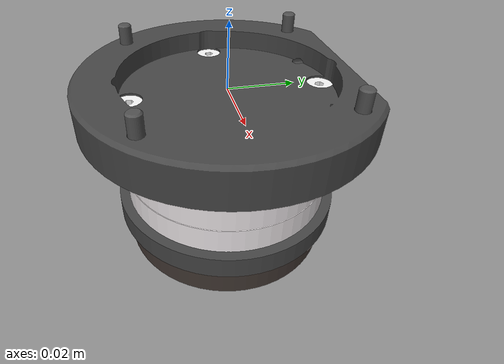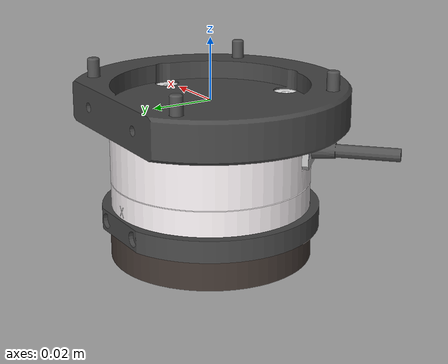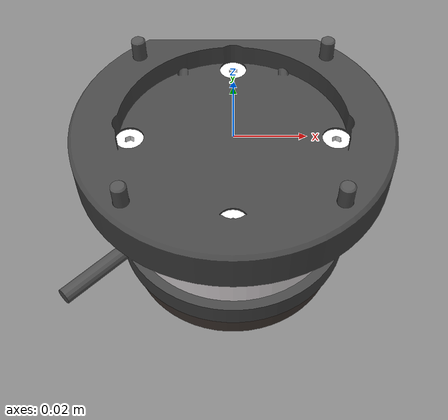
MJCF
<mujoco model="FT_SENSOR_L">
  <default>
    <default class="visual">
      <geom group="2" type="mesh" contype="0" conaffinity="0"/>
    </default>
    <default class="collision">
      <geom group="3" type="mesh"/>
    </default>
  </default>
  <asset>
    <material name="69,69,69" specular="1.0" shininess="1.0" rgba="0.270588 0.270588 0.270588 1.000000"/>
    <material name="242,236,238" specular="1.0" shininess="0.2" rgba="0.949020 0.925490 0.933333 1.000000"/>
    <material name="163,163,175" specular="1.0" shininess="0.2" rgba="0.639216 0.639216 0.686275 1.000000"/>
    <material name="192,192,192" specular="1.0" shininess="0.2" rgba="0.752941 0.752941 0.752941 1.000000"/>
    <material name="79,79,79" specular="1.0" shininess="0.2" rgba="0.309804 0.309804 0.309804 1.000000"/>
    <material name="216,214,214" specular="1.0" shininess="0.2" rgba="0.847059 0.839216 0.839216 1.000000"/>
    <material name="191,191,191" specular="0.0" shininess="0.3" rgba="0.749020 0.749020 0.749020 1.000000"/>
    <material name="244,244,244" specular="0.9568629999999999" shininess="1.0" rgba="0.956863 0.956863 0.956863 1.000000"/>
    <material name="80,80,80" specular="0.0" shininess="0.5" rgba="0.313725 0.313725 0.313725 1.000000"/>
    <material name="65,55,50" specular="1.0" shininess="0.2" rgba="0.254902 0.215686 0.196078 1.000000"/>
    <material name="254,254,255" specular="0.9973853333333333" shininess="1.0" rgba="0.996078 0.996078 1.000000 1.000000"/>
    <mesh file="FT_SENSOR_L_0.obj"/>
    <mesh file="FT_SENSOR_L_1.obj"/>
    <mesh file="FT_SENSOR_L_2.obj"/>
    <mesh file="FT_SENSOR_L_3.obj"/>
    <mesh file="FT_SENSOR_L_4.obj"/>
    <mesh file="FT_SENSOR_L_5.obj"/>
    <mesh file="FT_SENSOR_L_6.obj"/>
    <mesh file="FT_SENSOR_L_7.obj"/>
    <mesh file="FT_SENSOR_L_8.obj"/>
    <mesh file="FT_SENSOR_L_9.obj"/>
    <mesh file="FT_SENSOR_L_10.obj"/>
    <mesh file="FT_SENSOR_L_collision_0.obj"/>
    <mesh file="FT_SENSOR_L_collision_1.obj"/>
    <mesh file="FT_SENSOR_L_collision_2.obj"/>
    <mesh file="FT_SENSOR_L_collision_3.obj"/>
    <mesh file="FT_SENSOR_L_collision_4.obj"/>
    <mesh file="FT_SENSOR_L_collision_5.obj"/>
    <mesh file="FT_SENSOR_L_collision_6.obj"/>
    <mesh file="FT_SENSOR_L_collision_7.obj"/>
    <mesh file="FT_SENSOR_L_collision_8.obj"/>
    <mesh file="FT_SENSOR_L_collision_9.obj"/>
    <mesh file="FT_SENSOR_L_collision_10.obj"/>
    <mesh file="FT_SENSOR_L_collision_11.obj"/>
    <mesh file="FT_SENSOR_L_collision_12.obj"/>
    <mesh file="FT_SENSOR_L_collision_13.obj"/>
    <mesh file="FT_SENSOR_L_collision_14.obj"/>
    <mesh file="FT_SENSOR_L_collision_15.obj"/>
    <mesh file="FT_SENSOR_L_collision_16.obj"/>
    <mesh file="FT_SENSOR_L_collision_17.obj"/>
    <mesh file="FT_SENSOR_L_collision_18.obj"/>
    <mesh file="FT_SENSOR_L_collision_19.obj"/>
    <mesh file="FT_SENSOR_L_collision_20.obj"/>
    <mesh file="FT_SENSOR_L_collision_21.obj"/>
    <mesh file="FT_SENSOR_L_collision_22.obj"/>
    <mesh file="FT_SENSOR_L_collision_23.obj"/>
    <mesh file="FT_SENSOR_L_collision_24.obj"/>
    <mesh file="FT_SENSOR_L_collision_25.obj"/>
    <mesh file="FT_SENSOR_L_collision_26.obj"/>
    <mesh file="FT_SENSOR_L_collision_27.obj"/>
    <mesh file="FT_SENSOR_L_collision_28.obj"/>
    <mesh file="FT_SENSOR_L_collision_29.obj"/>
    <mesh file="FT_SENSOR_L_collision_30.obj"/>
    <mesh file="FT_SENSOR_L_collision_31.obj"/>
    <mesh file="FT_SENSOR_L_collision_32.obj"/>
    <mesh file="FT_SENSOR_L_collision_33.obj"/>
    <mesh file="FT_SENSOR_L_collision_34.obj"/>
    <mesh file="FT_SENSOR_L_collision_35.obj"/>
    <mesh file="FT_SENSOR_L_collision_36.obj"/>
    <mesh file="FT_SENSOR_L_collision_37.obj"/>
    <mesh file="FT_SENSOR_L_collision_38.obj"/>
    <mesh file="FT_SENSOR_L_collision_39.obj"/>
    <mesh file="FT_SENSOR_L_collision_40.obj"/>
    <mesh file="FT_SENSOR_L_collision_41.obj"/>
    <mesh file="FT_SENSOR_L_collision_42.obj"/>
    <mesh file="FT_SENSOR_L_collision_43.obj"/>
    <mesh file="FT_SENSOR_L_collision_44.obj"/>
    <mesh file="FT_SENSOR_L_collision_45.obj"/>
    <mesh file="FT_SENSOR_L_collision_46.obj"/>
    <mesh file="FT_SENSOR_L_collision_47.obj"/>
    <mesh file="FT_SENSOR_L_collision_48.obj"/>
    <mesh file="FT_SENSOR_L_collision_49.obj"/>
    <mesh file="FT_SENSOR_L_collision_50.obj"/>
    <mesh file="FT_SENSOR_L_collision_51.obj"/>
    <mesh file="FT_SENSOR_L_collision_52.obj"/>
    <mesh file="FT_SENSOR_L_collision_53.obj"/>
    <mesh file="FT_SENSOR_L_collision_54.obj"/>
    <mesh file="FT_SENSOR_L_collision_55.obj"/>
    <mesh file="FT_SENSOR_L_collision_56.obj"/>
    <mesh file="FT_SENSOR_L_collision_57.obj"/>
    <mesh file="FT_SENSOR_L_collision_58.obj"/>
    <mesh file="FT_SENSOR_L_collision_59.obj"/>
    <mesh file="FT_SENSOR_L_collision_60.obj"/>
    <mesh file="FT_SENSOR_L_collision_61.obj"/>
    <mesh file="FT_SENSOR_L_collision_62.obj"/>
    <mesh file="FT_SENSOR_L_collision_63.obj"/>
    <mesh file="FT_SENSOR_L_collision_64.obj"/>
    <mesh file="FT_SENSOR_L_collision_65.obj"/>
    <mesh file="FT_SENSOR_L_collision_66.obj"/>
    <mesh file="FT_SENSOR_L_collision_67.obj"/>
    <mesh file="FT_SENSOR_L_collision_68.obj"/>
    <mesh file="FT_SENSOR_L_collision_69.obj"/>
    <mesh file="FT_SENSOR_L_collision_70.obj"/>
    <mesh file="FT_SENSOR_L_collision_71.obj"/>
    <mesh file="FT_SENSOR_L_collision_72.obj"/>
    <mesh file="FT_SENSOR_L_collision_73.obj"/>
    <mesh file="FT_SENSOR_L_collision_74.obj"/>
    <mesh file="FT_SENSOR_L_collision_75.obj"/>
    <mesh file="FT_SENSOR_L_collision_76.obj"/>
    <mesh file="FT_SENSOR_L_collision_77.obj"/>
    <mesh file="FT_SENSOR_L_collision_78.obj"/>
    <mesh file="FT_SENSOR_L_collision_79.obj"/>
    <mesh file="FT_SENSOR_L_collision_80.obj"/>
    <mesh file="FT_SENSOR_L_collision_81.obj"/>
    <mesh file="FT_SENSOR_L_collision_82.obj"/>
    <mesh file="FT_SENSOR_L_collision_83.obj"/>
    <mesh file="FT_SENSOR_L_collision_84.obj"/>
    <mesh file="FT_SENSOR_L_collision_85.obj"/>
    <mesh file="FT_SENSOR_L_collision_86.obj"/>
    <mesh file="FT_SENSOR_L_collision_87.obj"/>
    <mesh file="FT_SENSOR_L_collision_88.obj"/>
    <mesh file="FT_SENSOR_L_collision_89.obj"/>
    <mesh file="FT_SENSOR_L_collision_90.obj"/>
    <mesh file="FT_SENSOR_L_collision_91.obj"/>
    <mesh file="FT_SENSOR_L_collision_92.obj"/>
    <mesh file="FT_SENSOR_L_collision_93.obj"/>
    <mesh file="FT_SENSOR_L_collision_94.obj"/>
    <mesh file="FT_SENSOR_L_collision_95.obj"/>
    <mesh file="FT_SENSOR_L_collision_96.obj"/>
    <mesh file="FT_SENSOR_L_collision_97.obj"/>
    <mesh file="FT_SENSOR_L_collision_98.obj"/>
    <mesh file="FT_SENSOR_L_collision_99.obj"/>
    <mesh file="FT_SENSOR_L_collision_100.obj"/>
    <mesh file="FT_SENSOR_L_collision_101.obj"/>
    <mesh file="FT_SENSOR_L_collision_102.obj"/>
    <mesh file="FT_SENSOR_L_collision_103.obj"/>
    <mesh file="FT_SENSOR_L_collision_104.obj"/>
    <mesh file="FT_SENSOR_L_collision_105.obj"/>
    <mesh file="FT_SENSOR_L_collision_106.obj"/>
    <mesh file="FT_SENSOR_L_collision_107.obj"/>
    <mesh file="FT_SENSOR_L_collision_108.obj"/>
    <mesh file="FT_SENSOR_L_collision_109.obj"/>
    <mesh file="FT_SENSOR_L_collision_110.obj"/>
    <mesh file="FT_SENSOR_L_collision_111.obj"/>
    <mesh file="FT_SENSOR_L_collision_112.obj"/>
    <mesh file="FT_SENSOR_L_collision_113.obj"/>
    <mesh file="FT_SENSOR_L_collision_114.obj"/>
    <mesh file="FT_SENSOR_L_collision_115.obj"/>
    <mesh file="FT_SENSOR_L_collision_116.obj"/>
  </asset>
  <worldbody>
    <body name="FT_SENSOR_L">
      <geom mesh="FT_SENSOR_L_0" material="254,254,255" class="visual"/>
      <geom mesh="FT_SENSOR_L_1" material="65,55,50" class="visual"/>
      <geom mesh="FT_SENSOR_L_2" material="80,80,80" class="visual"/>
      <geom mesh="FT_SENSOR_L_3" material="244,244,244" class="visual"/>
      <geom mesh="FT_SENSOR_L_4" material="191,191,191" class="visual"/>
      <geom mesh="FT_SENSOR_L_5" material="216,214,214" class="visual"/>
      <geom mesh="FT_SENSOR_L_6" material="79,79,79" class="visual"/>
      <geom mesh="FT_SENSOR_L_7" material="192,192,192" class="visual"/>
      <geom mesh="FT_SENSOR_L_8" material="163,163,175" class="visual"/>
      <geom mesh="FT_SENSOR_L_9" material="242,236,238" class="visual"/>
      <geom mesh="FT_SENSOR_L_10" material="69,69,69" class="visual"/>
      <geom mesh="FT_SENSOR_L_collision_0" rgba="0.29514178313721795 0.9620169781924668 0.5025888155270016 1" class="collision"/>
      <geom mesh="FT_SENSOR_L_collision_1" rgba="0.868940726692921 0.7288447773678695 0.3379560309185472 1" class="collision"/>
      <geom mesh="FT_SENSOR_L_collision_2" rgba="0.6888782146540074 0.20964116017246115 0.4068837318387558 1" class="collision"/>
      <geom mesh="FT_SENSOR_L_collision_3" rgba="0.8299637267878027 0.5560557268398587 0.6116744771383542 1" class="collision"/>
      <geom mesh="FT_SENSOR_L_collision_4" rgba="0.4525369961376823 0.777199867939363 0.46059640727463047 1" class="collision"/>
      <geom mesh="FT_SENSOR_L_collision_5" rgba="0.7334761472736252 0.20916998025116673 0.35122243067893755 1" class="collision"/>
      <geom mesh="FT_SENSOR_L_collision_6" rgba="0.16847918445287124 0.5510155858515436 0.9606827418764886 1" class="collision"/>
      <geom mesh="FT_SENSOR_L_collision_7" rgba="0.17101768109522997 0.41243451247569907 0.1333889472425085 1" class="collision"/>
      <geom mesh="FT_SENSOR_L_collision_8" rgba="0.115513843063762 0.36822110211242 0.2675338726561174 1" class="collision"/>
      <geom mesh="FT_SENSOR_L_collision_9" rgba="0.27609162936464615 0.18844060968811016 0.6800013423244379 1" class="collision"/>
      <geom mesh="FT_SENSOR_L_collision_10" rgba="0.006062725304746275 0.7199303089223781 0.7642123682212327 1" class="collision"/>
      <geom mesh="FT_SENSOR_L_collision_11" rgba="0.7569127108526659 0.26885124648162384 0.28294420967950595 1" class="collision"/>
      <geom mesh="FT_SENSOR_L_collision_12" rgba="0.2905059673330801 0.2662907390155811 0.6210429537371269 1" class="collision"/>
      <geom mesh="FT_SENSOR_L_collision_13" rgba="0.46957295124875686 0.6943252575659798 0.5373572028632301 1" class="collision"/>
      <geom mesh="FT_SENSOR_L_collision_14" rgba="0.9806949231396006 0.6958123739425488 0.9314028111089104 1" class="collision"/>
      <geom mesh="FT_SENSOR_L_collision_15" rgba="0.9458027790673158 0.5413891567166004 0.28858593252423215 1" class="collision"/>
      <geom mesh="FT_SENSOR_L_collision_16" rgba="0.06716667091374395 0.34317528566349154 0.06611561093140617 1" class="collision"/>
      <geom mesh="FT_SENSOR_L_collision_17" rgba="0.4913026180643446 0.9259031842497245 0.7906739328513575 1" class="collision"/>
      <geom mesh="FT_SENSOR_L_collision_18" rgba="0.9758730283704435 0.3912758728476098 0.7291473427174435 1" class="collision"/>
      <geom mesh="FT_SENSOR_L_collision_19" rgba="0.01760420345411895 0.7061905335876009 0.7703089671626404 1" class="collision"/>
      <geom mesh="FT_SENSOR_L_collision_20" rgba="0.3084637747730591 0.3942211966172714 0.9241060286649977 1" class="collision"/>
      <geom mesh="FT_SENSOR_L_collision_21" rgba="0.736808191273888 0.44754131700897903 0.45998016788831964 1" class="collision"/>
      <geom mesh="FT_SENSOR_L_collision_22" rgba="0.431989148347492 0.23409311481179007 0.5322912267196106 1" class="collision"/>
      <geom mesh="FT_SENSOR_L_collision_23" rgba="0.5710828358602636 0.19318573725312171 0.4100510127079745 1" class="collision"/>
      <geom mesh="FT_SENSOR_L_collision_24" rgba="0.28382179458105294 0.044540237878364586 0.38873739586133593 1" class="collision"/>
      <geom mesh="FT_SENSOR_L_collision_25" rgba="0.7472997763909207 0.9480136990814558 0.060250314856541975 1" class="collision"/>
      <geom mesh="FT_SENSOR_L_collision_26" rgba="0.5841531290512747 0.968995988273052 0.7153162021515772 1" class="collision"/>
      <geom mesh="FT_SENSOR_L_collision_27" rgba="0.6429031153651168 0.24820787103941722 0.21048362738176474 1" class="collision"/>
      <geom mesh="FT_SENSOR_L_collision_28" rgba="0.5983237323548806 0.33405674312643596 0.03475472415318048 1" class="collision"/>
      <geom mesh="FT_SENSOR_L_collision_29" rgba="0.23095024426840838 0.03762941017991972 0.26463824851637496 1" class="collision"/>
      <geom mesh="FT_SENSOR_L_collision_30" rgba="0.7847285029809388 0.933387437971303 0.7605873773600651 1" class="collision"/>
      <geom mesh="FT_SENSOR_L_collision_31" rgba="0.5050019298992914 0.48841785019804096 0.43385717672744395 1" class="collision"/>
      <geom mesh="FT_SENSOR_L_collision_32" rgba="0.7643962067076747 0.5140486098168366 0.3043862877066318 1" class="collision"/>
      <geom mesh="FT_SENSOR_L_collision_33" rgba="0.4100348426589845 0.9410681249353724 0.5343853828690192 1" class="collision"/>
      <geom mesh="FT_SENSOR_L_collision_34" rgba="0.523019704751289 0.05873065069124361 0.5094250372703053 1" class="collision"/>
      <geom mesh="FT_SENSOR_L_collision_35" rgba="0.8795947961659029 0.3795769133762965 0.9377755847342288 1" class="collision"/>
      <geom mesh="FT_SENSOR_L_collision_36" rgba="0.8442156630436521 0.11264520188524763 0.1729005994572742 1" class="collision"/>
      <geom mesh="FT_SENSOR_L_collision_37" rgba="0.4918463912245764 0.5060429325598015 0.1342753050266573 1" class="collision"/>
      <geom mesh="FT_SENSOR_L_collision_38" rgba="0.8106729139513329 0.7743072476451451 0.6936663616935734 1" class="collision"/>
      <geom mesh="FT_SENSOR_L_collision_39" rgba="0.47330791159314467 0.4293407505711242 0.20454016905252992 1" class="collision"/>
      <geom mesh="FT_SENSOR_L_collision_40" rgba="0.2280680352643294 0.5788667464254421 0.44284947283474185 1" class="collision"/>
      <geom mesh="FT_SENSOR_L_collision_41" rgba="0.40414552833083595 0.9831098884810794 0.0819612466961902 1" class="collision"/>
      <geom mesh="FT_SENSOR_L_collision_42" rgba="0.8727366924060225 0.07250744258509834 0.3731108218065974 1" class="collision"/>
      <geom mesh="FT_SENSOR_L_collision_43" rgba="0.6063270786854245 0.511600492469249 0.163737753006852 1" class="collision"/>
      <geom mesh="FT_SENSOR_L_collision_44" rgba="0.08424802649247387 0.656014355875063 0.5871066671875534 1" class="collision"/>
      <geom mesh="FT_SENSOR_L_collision_45" rgba="0.712771286345682 0.7028436621870113 0.6085467357409825 1" class="collision"/>
      <geom mesh="FT_SENSOR_L_collision_46" rgba="0.1560018969861704 0.9027978610367237 0.8557465675230556 1" class="collision"/>
      <geom mesh="FT_SENSOR_L_collision_47" rgba="0.7475073672686036 0.23023802610624278 0.21037371500882018 1" class="collision"/>
      <geom mesh="FT_SENSOR_L_collision_48" rgba="0.5468488817812455 0.8584199777242061 0.1866848648005528 1" class="collision"/>
      <geom mesh="FT_SENSOR_L_collision_49" rgba="0.0814899788409732 0.298943718684358 0.34600863386444214 1" class="collision"/>
      <geom mesh="FT_SENSOR_L_collision_50" rgba="0.49354539669511244 0.6295177380305 0.2104566372500143 1" class="collision"/>
      <geom mesh="FT_SENSOR_L_collision_51" rgba="0.9379167102149178 0.2646994753978824 0.5483916088266995 1" class="collision"/>
      <geom mesh="FT_SENSOR_L_collision_52" rgba="0.36277848597610507 0.2669972185631807 0.8964161372324876 1" class="collision"/>
      <geom mesh="FT_SENSOR_L_collision_53" rgba="0.9422500322689319 0.525340492084393 0.4552205691167346 1" class="collision"/>
      <geom mesh="FT_SENSOR_L_collision_54" rgba="0.49162226073923343 0.01167511118179243 0.577613345874745 1" class="collision"/>
      <geom mesh="FT_SENSOR_L_collision_55" rgba="0.46038391986638305 0.351442423950599 0.3200130423319558 1" class="collision"/>
      <geom mesh="FT_SENSOR_L_collision_56" rgba="0.0454059767347571 0.7812975413477504 0.8030391262906392 1" class="collision"/>
      <geom mesh="FT_SENSOR_L_collision_57" rgba="0.39678051610928755 0.7950414656146104 0.3419732881743117 1" class="collision"/>
      <geom mesh="FT_SENSOR_L_collision_58" rgba="0.9242192490937619 0.06017174651453405 0.09120731691693984 1" class="collision"/>
      <geom mesh="FT_SENSOR_L_collision_59" rgba="0.7630329884442041 0.4270340483100803 0.8198483726150274 1" class="collision"/>
      <geom mesh="FT_SENSOR_L_collision_60" rgba="0.42606960117828685 0.9313909194762613 0.17215747287765382 1" class="collision"/>
      <geom mesh="FT_SENSOR_L_collision_61" rgba="0.8746323243598421 0.46680460047132366 0.4116500525156329 1" class="collision"/>
      <geom mesh="FT_SENSOR_L_collision_62" rgba="0.15332996115865316 0.5614733664182061 0.8693042834832577 1" class="collision"/>
      <geom mesh="FT_SENSOR_L_collision_63" rgba="0.20428066838208503 0.7566833912892533 0.3343419493826091 1" class="collision"/>
      <geom mesh="FT_SENSOR_L_collision_64" rgba="0.6079309297433116 0.09504807296064133 0.2828837754359922 1" class="collision"/>
      <geom mesh="FT_SENSOR_L_collision_65" rgba="0.31916364763988714 0.6292665633278536 0.6825389766365773 1" class="collision"/>
      <geom mesh="FT_SENSOR_L_collision_66" rgba="0.7024514852081625 0.610276788551396 0.642852576047171 1" class="collision"/>
      <geom mesh="FT_SENSOR_L_collision_67" rgba="0.7978615452726922 0.5069250033717659 0.22601728044388014 1" class="collision"/>
      <geom mesh="FT_SENSOR_L_collision_68" rgba="0.537938395826627 0.2318131968345628 0.7602063477276149 1" class="collision"/>
      <geom mesh="FT_SENSOR_L_collision_69" rgba="0.4003442346054161 0.8315629378654884 0.7945364051274377 1" class="collision"/>
      <geom mesh="FT_SENSOR_L_collision_70" rgba="0.905632747772133 0.5620730745234233 0.5840946776156376 1" class="collision"/>
      <geom mesh="FT_SENSOR_L_collision_71" rgba="0.5557389070248461 0.1907156160170801 0.017960096250307034 1" class="collision"/>
      <geom mesh="FT_SENSOR_L_collision_72" rgba="0.9446519447706931 0.23722904429995995 0.43086918397292573 1" class="collision"/>
      <geom mesh="FT_SENSOR_L_collision_73" rgba="0.07793192836360385 0.21404555340198161 0.4443416301938229 1" class="collision"/>
      <geom mesh="FT_SENSOR_L_collision_74" rgba="0.4384567862041626 0.29968363911818185 0.7104677720983936 1" class="collision"/>
      <geom mesh="FT_SENSOR_L_collision_75" rgba="0.5518716642154041 0.5693667125953259 0.2460347003918958 1" class="collision"/>
      <geom mesh="FT_SENSOR_L_collision_76" rgba="0.20646600145453176 0.8744007254275833 0.8962658857181707 1" class="collision"/>
      <geom mesh="FT_SENSOR_L_collision_77" rgba="0.6043746061205091 0.41058036775130724 0.5669741754119052 1" class="collision"/>
      <geom mesh="FT_SENSOR_L_collision_78" rgba="0.765731154987647 0.9592192840890688 0.05598459283310986 1" class="collision"/>
      <geom mesh="FT_SENSOR_L_collision_79" rgba="0.7976205885933121 0.08366141279339223 0.7129667837740052 1" class="collision"/>
      <geom mesh="FT_SENSOR_L_collision_80" rgba="0.6877053294571585 0.9831664781796793 0.9309912904141237 1" class="collision"/>
      <geom mesh="FT_SENSOR_L_collision_81" rgba="0.42850809518823785 0.592332432845866 0.6906384326056438 1" class="collision"/>
      <geom mesh="FT_SENSOR_L_collision_82" rgba="0.5828023026833242 0.9643598265300702 0.3443988739479622 1" class="collision"/>
      <geom mesh="FT_SENSOR_L_collision_83" rgba="0.95822752096858 0.9672200402605438 0.8987316013169733 1" class="collision"/>
      <geom mesh="FT_SENSOR_L_collision_84" rgba="0.5985152529858203 0.24263148860872263 0.7349951695464175 1" class="collision"/>
      <geom mesh="FT_SENSOR_L_collision_85" rgba="0.1448052574944827 0.6596448980175894 0.7644758561635872 1" class="collision"/>
      <geom mesh="FT_SENSOR_L_collision_86" rgba="0.4167049540206249 0.040368764131796575 0.78446120680553 1" class="collision"/>
      <geom mesh="FT_SENSOR_L_collision_87" rgba="0.448850881445207 0.6921116548800139 0.49828611657291877 1" class="collision"/>
      <geom mesh="FT_SENSOR_L_collision_88" rgba="0.46672944012238904 0.9021256645965658 0.3629705104884414 1" class="collision"/>
      <geom mesh="FT_SENSOR_L_collision_89" rgba="0.7430884623273187 0.17470796704030833 0.10291252955173791 1" class="collision"/>
      <geom mesh="FT_SENSOR_L_collision_90" rgba="0.994721403056372 0.4356242320856334 0.3409482326324965 1" class="collision"/>
      <geom mesh="FT_SENSOR_L_collision_91" rgba="0.7767153067427923 0.8338636854055863 0.7522786230379518 1" class="collision"/>
      <geom mesh="FT_SENSOR_L_collision_92" rgba="0.32666665593112143 0.30922312296484533 0.777776745787921 1" class="collision"/>
      <geom mesh="FT_SENSOR_L_collision_93" rgba="0.35258804744283523 0.7916475746267742 0.8844501156439131 1" class="collision"/>
      <geom mesh="FT_SENSOR_L_collision_94" rgba="0.8556729139293546 0.3258583456921442 0.8778348319888515 1" class="collision"/>
      <geom mesh="FT_SENSOR_L_collision_95" rgba="0.2229118650604025 0.025747255933865287 0.16264220725632994 1" class="collision"/>
      <geom mesh="FT_SENSOR_L_collision_96" rgba="0.3284333987760205 0.6464820817077483 0.7303989191072717 1" class="collision"/>
      <geom mesh="FT_SENSOR_L_collision_97" rgba="0.4388157610539577 0.043029204828774814 0.8398298571265496 1" class="collision"/>
      <geom mesh="FT_SENSOR_L_collision_98" rgba="0.3023463448326372 0.11270984750268798 0.7880794156513422 1" class="collision"/>
      <geom mesh="FT_SENSOR_L_collision_99" rgba="0.14008054107751622 0.6143675988005034 0.23583537356201534 1" class="collision"/>
      <geom mesh="FT_SENSOR_L_collision_100" rgba="0.5400949210789254 0.14081503662005201 0.4294238739082876 1" class="collision"/>
      <geom mesh="FT_SENSOR_L_collision_101" rgba="0.756681289447326 0.7856622908685121 0.34666501624030044 1" class="collision"/>
      <geom mesh="FT_SENSOR_L_collision_102" rgba="0.4253483941129178 0.8723156247200129 0.8306684635852234 1" class="collision"/>
      <geom mesh="FT_SENSOR_L_collision_103" rgba="0.7221561432145549 0.6023642506398821 0.6350268795720891 1" class="collision"/>
      <geom mesh="FT_SENSOR_L_collision_104" rgba="0.9623985649350447 0.8929151499825864 0.09368954318662037 1" class="collision"/>
      <geom mesh="FT_SENSOR_L_collision_105" rgba="0.25452334020826306 0.8981562358081069 0.9484695452823235 1" class="collision"/>
      <geom mesh="FT_SENSOR_L_collision_106" rgba="0.7847543233310065 0.12770976850563232 0.10983096883400978 1" class="collision"/>
      <geom mesh="FT_SENSOR_L_collision_107" rgba="0.10672257341589897 0.9608284104659208 0.6105458705096841 1" class="collision"/>
      <geom mesh="FT_SENSOR_L_collision_108" rgba="0.03984130350737558 0.35910209786583625 0.13396743072827622 1" class="collision"/>
      <geom mesh="FT_SENSOR_L_collision_109" rgba="0.775727678351182 0.6723892533114911 0.4902534136788683 1" class="collision"/>
      <geom mesh="FT_SENSOR_L_collision_110" rgba="0.37481497808270026 0.09502591589521892 0.9051649864751873 1" class="collision"/>
      <geom mesh="FT_SENSOR_L_collision_111" rgba="0.5648132934497705 0.7006478272921767 0.35326019245408347 1" class="collision"/>
      <geom mesh="FT_SENSOR_L_collision_112" rgba="0.9190811620120937 0.7306679586395763 0.975795415372224 1" class="collision"/>
      <geom mesh="FT_SENSOR_L_collision_113" rgba="0.5172759171846139 0.8573722132180845 0.2328221827887007 1" class="collision"/>
      <geom mesh="FT_SENSOR_L_collision_114" rgba="0.7121648231694898 0.14953358141525952 0.9448235400810563 1" class="collision"/>
      <geom mesh="FT_SENSOR_L_collision_115" rgba="0.9310591540025169 0.8684055759472985 0.9186193593744472 1" class="collision"/>
      <geom mesh="FT_SENSOR_L_collision_116" rgba="0.29169552843661173 0.08128074268557584 0.9693036224187206 1" class="collision"/>
    </body>
  </worldbody>
</mujoco>
